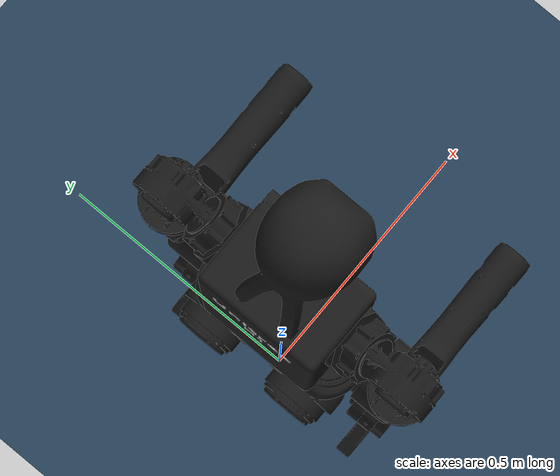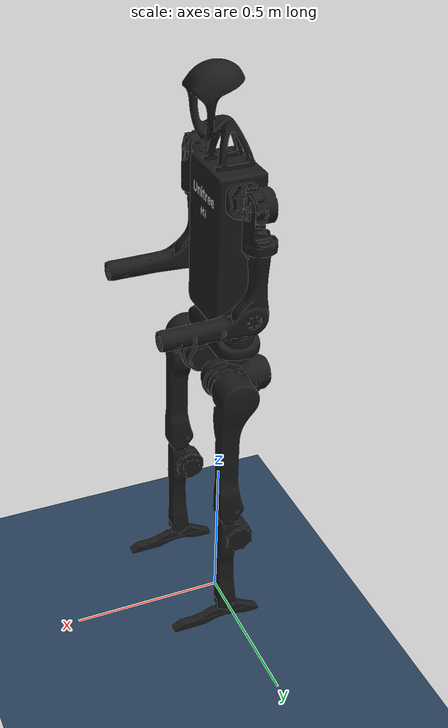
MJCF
<mujoco model="Unitree H1">
  <include file="h1.xml" />
  <statistic center="1 0.7 1.5" extent="0.8" />
  <visual>
    <headlight diffuse="0.6 0.6 0.6" ambient="0.3 0.3 0.3" specular="0 0 0" />
    <rgba haze="0.15 0.25 0.35 1" />
    <global azimuth="-140" elevation="-30" />
  </visual>
  <asset>
    <texture type="skybox" builtin="flat" rgb1="0 0 0" rgb2="0 0 0" width="512" height="3072" />
    <texture type="2d" name="groundplane" builtin="checker" mark="edge" rgb1="0.2 0.3 0.4"
      rgb2="0.1 0.2 0.3" markrgb="0.8 0.8 0.8" width="300" height="300" />
    <material name="groundplane" texture="groundplane" texuniform="true" texrepeat="5 5"
      reflectance="0.2" />
  </asset>
  <worldbody>
    <light pos="0 0 1.5" dir="0 0 -1" directional="true" />
    <geom name="floor" size="0 0 0.05" type="plane" material="groundplane" />
  </worldbody>
</mujoco>

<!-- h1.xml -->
<mujoco model="h1">
  <compiler angle="radian" meshdir="../meshes" autolimits="true"/>

  <default>
    <default class="h1">
      <geom type="mesh"/>
      <joint damping="1" armature="0.1"/>
      <default class="visual">
        <geom contype="0" conaffinity="0" group="2" material="black"/>
      </default>
      <default class="collision">
        <geom group="3" mass="0" density="0"/>
      </default>
      <site size="0.001" rgba="0.5 0.5 0.5 0.3" group="4"/>
    </default>
  </default>

  <asset>
    <material name="black" rgba="0.1 0.1 0.1 1"/>
    <material name="white" rgba="1 1 1 1"/>

    <mesh file="pelvis.STL"/>
    <mesh file="left_hip_yaw_link.STL"/>
    <mesh file="left_hip_roll_link.STL"/>
    <mesh file="left_hip_pitch_link.STL"/>
    <mesh file="left_knee_link.STL"/>
    <mesh file="left_ankle_link.STL"/>
    <mesh file="right_hip_yaw_link.STL"/>
    <mesh file="right_hip_roll_link.STL"/>
    <mesh file="right_hip_pitch_link.STL"/>
    <mesh file="right_knee_link.STL"/>
    <mesh file="right_ankle_link.STL"/>
    <mesh file="torso_link.STL"/>
    <mesh file="left_shoulder_pitch_link.STL"/>
    <mesh file="left_shoulder_roll_link.STL"/>
    <mesh file="left_shoulder_yaw_link.STL"/>
    <mesh file="left_elbow_link.STL"/>
    <mesh file="right_shoulder_pitch_link.STL"/>
    <mesh file="right_shoulder_roll_link.STL"/>
    <mesh file="right_shoulder_yaw_link.STL"/>
    <mesh file="right_elbow_link.STL"/>
    <mesh file="logo_link.STL"/>
  </asset>

  <worldbody>
    <body name="pelvis" pos="0 0 1.1" childclass="h1">
      <inertial pos="-0.0002 4e-05 -0.04522" quat="0.498303 0.499454 -0.500496 0.501741" mass="5.39"
        diaginertia="0.0490211 0.0445821 0.00824619"/>
      <freejoint/>
      <geom class="visual" mesh="pelvis"/>
      <geom class="collision" mesh="pelvis"/>
      <body name="left_hip_yaw_link" pos="0 0.0875 -0.1742">
        <inertial pos="-0.04923 0.0001 0.0072" quat="0.69699 0.219193 0.233287 0.641667" mass="2.244"
          diaginertia="0.00304494 0.00296885 0.00189201"/>
        <joint name="left_hip_yaw_joint" axis="0 0 1" range="-0.43 0.43"/>
        <geom class="visual" mesh="left_hip_yaw_link"/>
        <geom size="0.06 0.035" pos="-0.067 0 0" quat="0.707123 0 0.70709 0" type="cylinder" class="collision"/>
        <body name="left_hip_roll_link" pos="0.039468 0 0">
          <inertial pos="-0.0058 -0.00319 -9e-05" quat="0.0438242 0.70721 -0.0729075 0.701867" mass="2.232"
            diaginertia="0.00243264 0.00225325 0.00205492"/>
          <joint name="left_hip_roll_joint" axis="1 0 0" range="-0.43 0.43"/>
          <geom class="visual" mesh="left_hip_roll_link"/>
          <geom class="collision" mesh="left_hip_roll_link"/>
          <body name="left_hip_pitch_link" pos="0 0.11536 0">
            <inertial pos="0.00746 -0.02346 -0.08193" quat="0.979828 0.0513522 -0.0169854 -0.192382" mass="4.152"
              diaginertia="0.0829503 0.0821457 0.00510909"/>
            <joint name="left_hip_pitch_joint" axis="0 1 0" range="-3.14 2.53"/>
            <geom class="visual" mesh="left_hip_pitch_link"/>
            <geom class="collision" mesh="left_hip_pitch_link"/>
            <body name="left_knee_link" pos="0 0 -0.4">
              <inertial pos="-0.00136 -0.00512 -0.1384" quat="0.626132 -0.034227 -0.0416277 0.777852" mass="1.721"
                diaginertia="0.0125237 0.0123104 0.0019428"/>
              <joint name="left_knee_joint" axis="0 1 0" range="-0.26 2.05"/>
              <geom class="visual" mesh="left_knee_link"/>
              <geom class="collision" mesh="left_knee_link"/>
              <body name="left_ankle_link" pos="0 0 -0.4">
                <inertial pos="0.048568 0 -0.045609" quat="0.489385 0.510394 0.510394 0.489385" mass="0.552448"
                  diaginertia="0.00362 0.00355701 0.000149987"/>
                <joint name="left_ankle_joint" axis="0 1 0" range="-0.87 0.52"/>
                <geom class="visual" mesh="left_ankle_link"/>
                <geom class="collision" mesh="left_ankle_link"/>
              </body>
            </body>
          </body>
        </body>
      </body>
      <body name="right_hip_yaw_link" pos="0 -0.0875 -0.1742">
        <inertial pos="-0.04923 -0.0001 0.0072" quat="0.641667 0.233287 0.219193 0.69699" mass="2.244"
          diaginertia="0.00304494 0.00296885 0.00189201"/>
        <joint name="right_hip_yaw_joint" axis="0 0 1" range="-0.43 0.43"/>
        <geom class="visual" mesh="right_hip_yaw_link"/>
        <geom size="0.06 0.035" pos="-0.067 0 0" quat="0.707123 0 0.70709 0" type="cylinder" class="collision"/>
        <body name="right_hip_roll_link" pos="0.039468 0 0">
          <inertial pos="-0.0058 0.00319 -9e-05" quat="-0.0438242 0.70721 0.0729075 0.701867" mass="2.232"
            diaginertia="0.00243264 0.00225325 0.00205492"/>
          <joint name="right_hip_roll_joint" axis="1 0 0" range="-0.43 0.43"/>
          <geom class="visual" mesh="right_hip_roll_link"/>
          <geom class="collision" mesh="right_hip_roll_link"/>
          <body name="right_hip_pitch_link" pos="0 -0.11536 0">
            <inertial pos="0.00746 0.02346 -0.08193" quat="0.979828 -0.0513522 -0.0169854 0.192382" mass="4.152"
              diaginertia="0.0829503 0.0821457 0.00510909"/>
            <joint name="right_hip_pitch_joint" axis="0 1 0" range="-3.14 2.53"/>
            <geom class="visual" mesh="right_hip_pitch_link"/>
            <geom class="collision" mesh="right_hip_pitch_link"/>
            <body name="right_knee_link" pos="0 0 -0.4">
              <inertial pos="-0.00136 0.00512 -0.1384" quat="0.777852 -0.0416277 -0.034227 0.626132" mass="1.721"
                diaginertia="0.0125237 0.0123104 0.0019428"/>
              <joint name="right_knee_joint" axis="0 1 0" range="-0.26 2.05"/>
              <geom class="visual" mesh="right_knee_link"/>
              <geom class="collision" mesh="right_knee_link"/>
              <body name="right_ankle_link" pos="0 0 -0.4">
                <inertial pos="0.048568 0 -0.045609" quat="0.489385 0.510394 0.510394 0.489385" mass="0.552448"
                  diaginertia="0.00362 0.00355701 0.000149987"/>
                <joint name="right_ankle_joint" axis="0 1 0" range="-0.87 0.52"/>
                <geom class="visual" mesh="right_ankle_link"/>
                <geom class="collision" mesh="right_ankle_link"/>
              </body>
            </body>
          </body>
        </body>
      </body>
      <body name="torso_link">
        <inertial pos="0.000489 0.002797 0.20484" quat="0.999989 -0.00130808 -0.00282289 -0.00349105" mass="17.789"
          diaginertia="0.487315 0.409628 0.127837"/>
        <joint name="torso_joint" axis="0 0 1" range="-2.35 2.35"/>
        <geom class="visual" mesh="torso_link"/>
        <geom class="collision" mesh="torso_link"/>
        <geom class="visual" material="white" mesh="logo_link"/>
        <site name="imu" size="0.01" pos="-0.04452 -0.01891 0.27756"/>
        <body name="left_shoulder_pitch_link" pos="0.0055 0.15535 0.42999" quat="0.976296 0.216438 0 0">
          <inertial pos="0.005045 0.053657 -0.015715" quat="0.814858 0.579236 -0.0201072 -0.00936488" mass="1.033"
            diaginertia="0.00129936 0.000987113 0.000858198"/>
          <joint name="left_shoulder_pitch_joint" axis="0 1 0" range="-2.87 2.87"/>
          <geom class="visual" mesh="left_shoulder_pitch_link"/>
          <geom class="collision" mesh="left_shoulder_pitch_link"/>
          <body name="left_shoulder_roll_link" pos="-0.0055 0.0565 -0.0165" quat="0.976296 -0.216438 0 0">
            <inertial pos="0.000679 0.00115 -0.094076" quat="0.732491 0.00917179 0.0766656 0.676384" mass="0.793"
              diaginertia="0.00170388 0.00158256 0.00100336"/>
            <joint name="left_shoulder_roll_joint" axis="1 0 0" range="-0.34 3.11"/>
            <geom class="visual" mesh="left_shoulder_roll_link"/>
            <geom class="collision" mesh="left_shoulder_roll_link"/>
            <body name="left_shoulder_yaw_link" pos="0 0 -0.1343">
              <inertial pos="0.01365 0.002767 -0.16266" quat="0.703042 -0.0331229 -0.0473362 0.708798" mass="0.839"
                diaginertia="0.00408038 0.00370367 0.000622687"/>
              <joint name="left_shoulder_yaw_joint" axis="0 0 1" range="-1.3 4.45"/>
              <geom class="visual" mesh="left_shoulder_yaw_link"/>
              <geom class="collision" mesh="left_shoulder_yaw_link"/>
              <body name="left_elbow_link" pos="0.0185 0 -0.198">
                <inertial pos="0.15908 -0.000144 -0.015776" quat="0.0765232 0.720327 0.0853116 0.684102" mass="0.669"
                  diaginertia="0.00601829 0.00600579 0.000408305"/>
                <joint name="left_elbow_joint" axis="0 1 0" range="-1.25 2.61"/>
                <geom class="visual" mesh="left_elbow_link"/>
                <geom class="collision" mesh="left_elbow_link"/>
              </body>
            </body>
          </body>
        </body>
        <body name="right_shoulder_pitch_link" pos="0.0055 -0.15535 0.42999" quat="0.976296 -0.216438 0 0">
          <inertial pos="0.005045 -0.053657 -0.015715" quat="0.579236 0.814858 0.00936488 0.0201072" mass="1.033"
            diaginertia="0.00129936 0.000987113 0.000858198"/>
          <joint name="right_shoulder_pitch_joint" axis="0 1 0" range="-2.87 2.87"/>
          <geom class="visual" mesh="right_shoulder_pitch_link"/>
          <geom class="collision" mesh="right_shoulder_pitch_link"/>
          <body name="right_shoulder_roll_link" pos="-0.0055 -0.0565 -0.0165" quat="0.976296 0.216438 0 0">
            <inertial pos="0.000679 -0.00115 -0.094076" quat="0.676384 0.0766656 0.00917179 0.732491" mass="0.793"
              diaginertia="0.00170388 0.00158256 0.00100336"/>
            <joint name="right_shoulder_roll_joint" axis="1 0 0" range="-3.11 0.34"/>
            <geom class="visual" mesh="right_shoulder_roll_link"/>
            <geom class="collision" mesh="right_shoulder_roll_link"/>
            <body name="right_shoulder_yaw_link" pos="0 0 -0.1343">
              <inertial pos="0.01365 -0.002767 -0.16266" quat="0.708798 -0.0473362 -0.0331229 0.703042" mass="0.839"
                diaginertia="0.00408038 0.00370367 0.000622687"/>
              <joint name="right_shoulder_yaw_joint" axis="0 0 1" range="-4.45 1.3"/>
              <geom class="visual" mesh="right_shoulder_yaw_link"/>
              <geom class="collision" mesh="right_shoulder_yaw_link"/>
              <body name="right_elbow_link" pos="0.0185 0 -0.198">
                <inertial pos="0.15908 0.000144 -0.015776" quat="-0.0765232 0.720327 -0.0853116 0.684102" mass="0.669"
                  diaginertia="0.00601829 0.00600579 0.000408305"/>
                <joint name="right_elbow_joint" axis="0 1 0" range="-1.25 2.61"/>
                <geom class="visual" mesh="right_elbow_link"/>
                <geom class="collision" mesh="right_elbow_link"/>
              </body>
            </body>
          </body>
        </body>
      </body>
    </body>
  </worldbody>

  <actuator>
    <motor class="h1" name="left_hip_yaw_joint" joint="left_hip_yaw_joint" ctrlrange="-200 200"/>
    <motor class="h1" name="left_hip_roll_joint" joint="left_hip_roll_joint" ctrlrange="-200 200"/>
    <motor class="h1" name="left_hip_pitch_joint" joint="left_hip_pitch_joint" ctrlrange="-200 200"/>
    <motor class="h1" name="left_knee_joint" joint="left_knee_joint" ctrlrange="-300 300"/>
    <motor class="h1" name="left_ankle_joint" joint="left_ankle_joint" ctrlrange="-40 40"/>
    <motor class="h1" name="right_hip_yaw_joint" joint="right_hip_yaw_joint" ctrlrange="-200 200"/>
    <motor class="h1" name="right_hip_roll_joint" joint="right_hip_roll_joint" ctrlrange="-200 200"/>
    <motor class="h1" name="right_hip_pitch_joint" joint="right_hip_pitch_joint" ctrlrange="-200 200"/>
    <motor class="h1" name="right_knee_joint" joint="right_knee_joint" ctrlrange="-300 300"/>
    <motor class="h1" name="right_ankle_joint" joint="right_ankle_joint" ctrlrange="-40 40"/>
    <motor class="h1" name="torso_joint" joint="torso_joint" ctrlrange="-200 200"/>
    <motor class="h1" name="left_shoulder_pitch_joint" joint="left_shoulder_pitch_joint" ctrlrange="-40 40"/>
    <motor class="h1" name="left_shoulder_roll_joint" joint="left_shoulder_roll_joint" ctrlrange="-40 40"/>
    <motor class="h1" name="left_shoulder_yaw_joint" joint="left_shoulder_yaw_joint" ctrlrange="-18 18"/>
    <motor class="h1" name="left_elbow_joint" joint="left_elbow_joint" ctrlrange="-18 18"/>
    <motor class="h1" name="right_shoulder_pitch_joint" joint="right_shoulder_pitch_joint" ctrlrange="-40 40"/>
    <motor class="h1" name="right_shoulder_roll_joint" joint="right_shoulder_roll_joint" ctrlrange="-40 40"/>
    <motor class="h1" name="right_shoulder_yaw_joint" joint="right_shoulder_yaw_joint" ctrlrange="-18 18"/>
    <motor class="h1" name="right_elbow_joint" joint="right_elbow_joint" ctrlrange="-18 18"/>
  </actuator>

  <sensor>
    <gyro name="imu-angular-velocity" site="imu" noise="5e-4" cutoff="34.9"/>
    <accelerometer name="imu-linear-acceleration" site="imu" noise="1e-2" cutoff="157"/>
  </sensor>

  <keyframe>
    <key name="home"
      qpos="
    0 0 0.98
    1 0 0 0
    0 0 -0.4 0.8 -0.4
    0 0 -0.4 0.8 -0.4
    0
    0 0 0 0
    0 0 0 0"/>
  </keyframe>
</mujoco>
